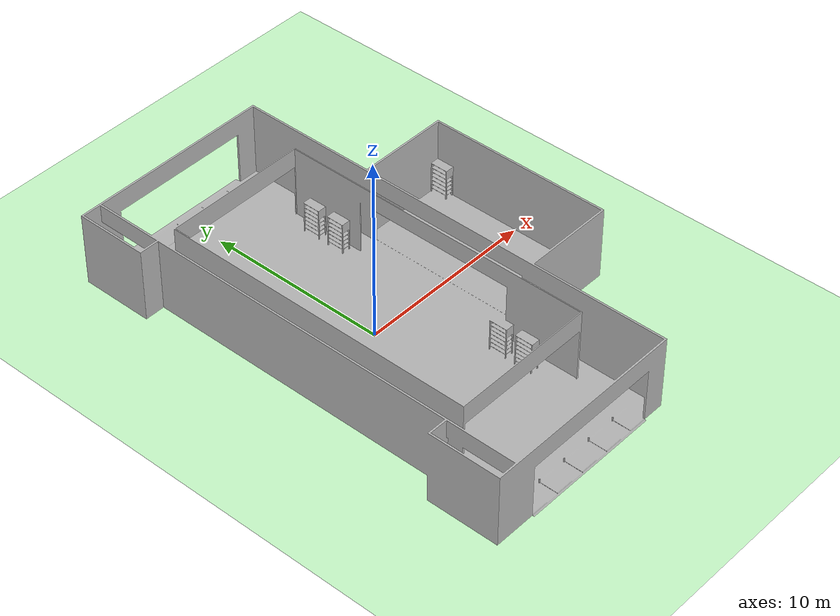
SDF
<?xml version="1.0" ?>
<sdf version="1.5">
  <world name="empty_world">

    <light name='sun' type='directional'>
       <cast_shadows>1</cast_shadows>
       <pose>0 0 10 0 -0 0</pose>
       <diffuse>0.8 0.8 0.8 1</diffuse>
       <specular>0.2 0.2 0.2 1</specular>
       <attenuation>
         <range>1000</range>
         <constant>0.9</constant>
         <linear>0.01</linear>
         <quadratic>0.001</quadratic>
       </attenuation>
       <direction>-0.5 0.1 -0.9</direction>
       <spot>
         <inner_angle>0</inner_angle>
         <outer_angle>0</outer_angle>
         <falloff>0</falloff>
       </spot>
     </light>

    <model name="warehouse_mesh">
      <static>true</static>
      <link name="warehouse_body">
        <collision name='warehouse_collision'>
          <geometry>
            <mesh>
              <uri>model://warehouse.obj</uri>
              <scale>0.5 0.5 0.5</scale>
            </mesh>
          </geometry>
          <surface>
            <friction>
              <ode/>
            </friction>
            <bounce/>
            <contact/>
          </surface>
        </collision>
        <visual name="warehouse_visual">
          <geometry>
            <mesh>
              <uri>model://warehouse.obj</uri>
              <scale>0.5 0.5 0.5</scale>
            </mesh>
          </geometry>
        </visual>
      </link>
      <pose>0 0 4 -1.57 0 0</pose>
    </model>

    <model name='ground_plane'>
      <static>true</static>
      <link name='ground_plane_link'>
        <collision name='ground_plane_collision'>
          <geometry>
            <plane>
              <normal>0 0 1</normal>
              <size>100 100</size>
            </plane>
          </geometry>
          <surface>
            <friction>
              <ode/>
            </friction>
            <bounce/>
            <contact/>
          </surface>
        </collision>
        <visual name='ground_plane_visual'>
          <geometry>
            <plane>
              <normal>0 0 1</normal>
              <size>100 100</size>
            </plane>
          </geometry>
          <material>
            <ambient>0.8 1 0.8 0</ambient>
            <diffuse>0.8 1 0.8 0</diffuse>
            <specular>0.8 1 0.8 0</specular>
          </material>
        </visual>
      </link>
      <pose>0 0 0 0 -0 0</pose>
    </model>

  </world>
</sdf>
